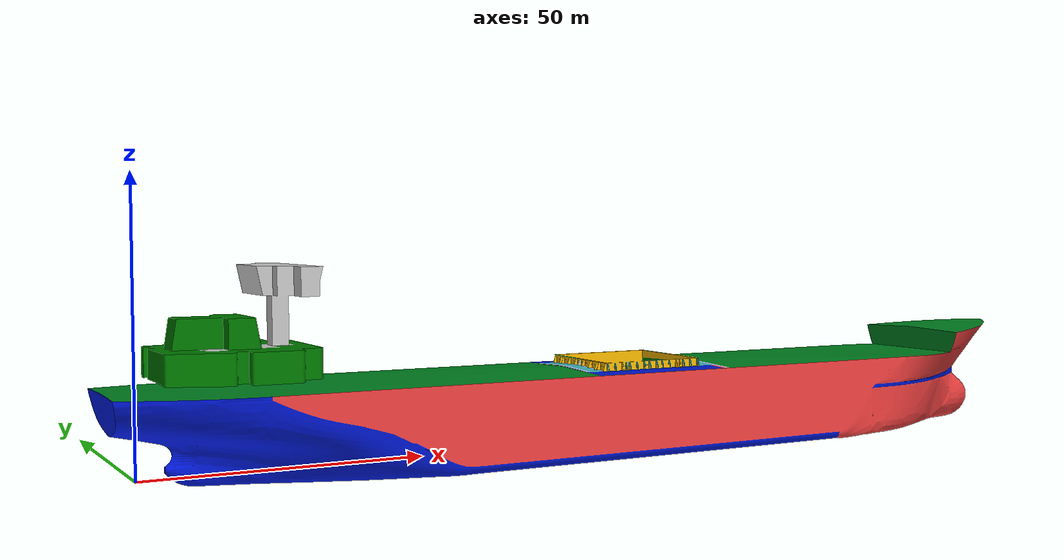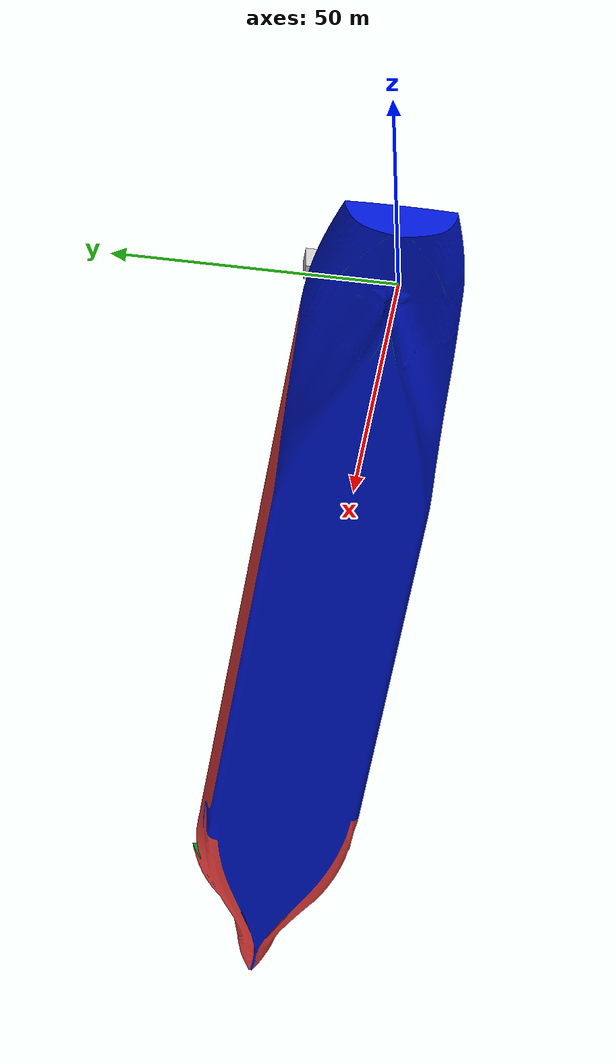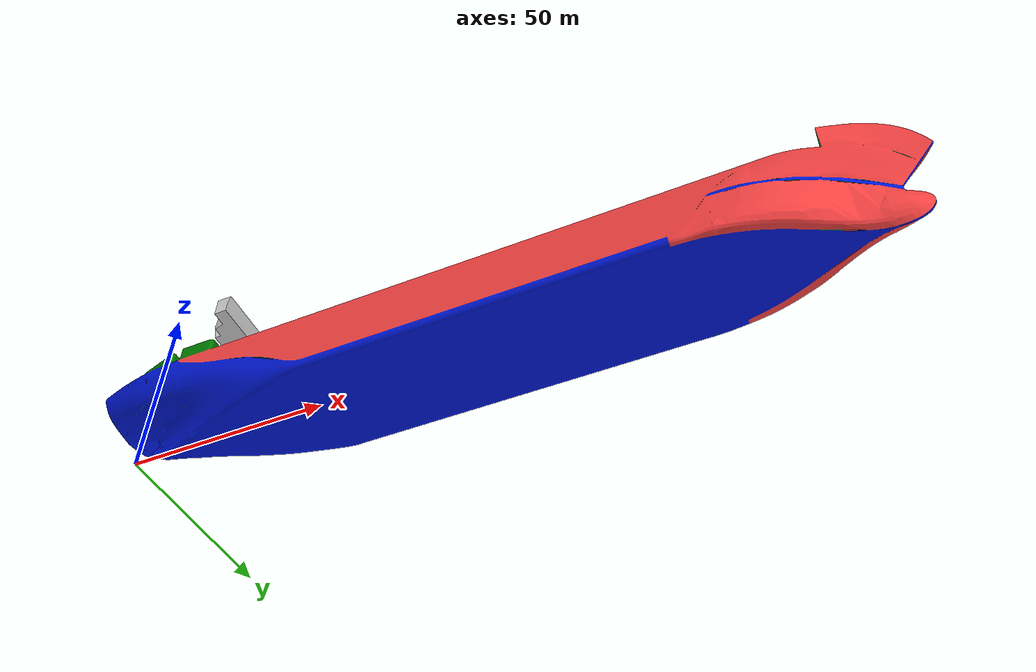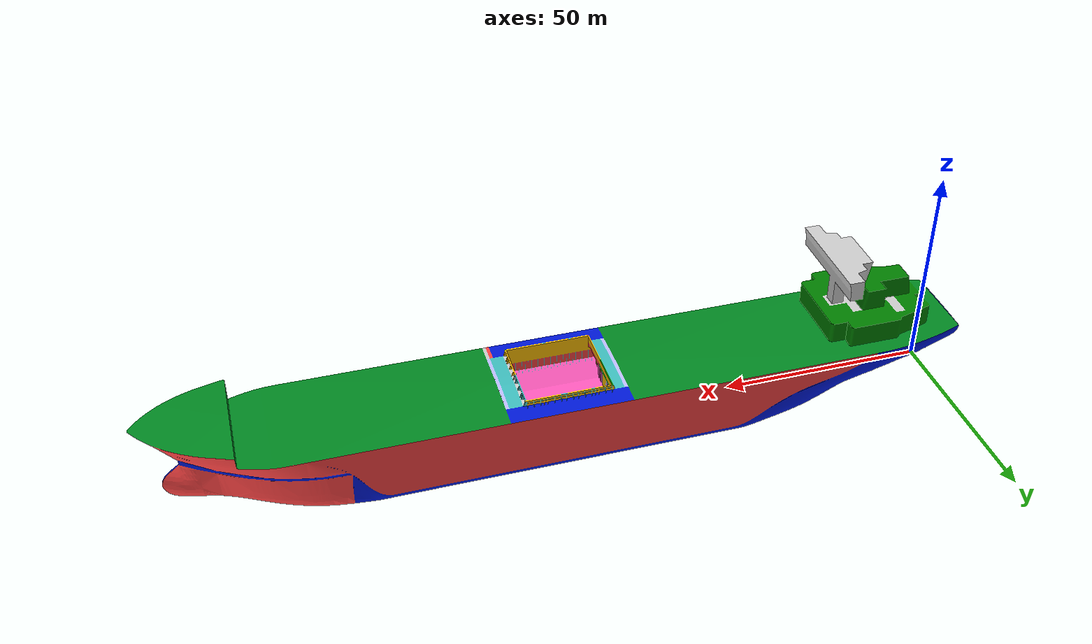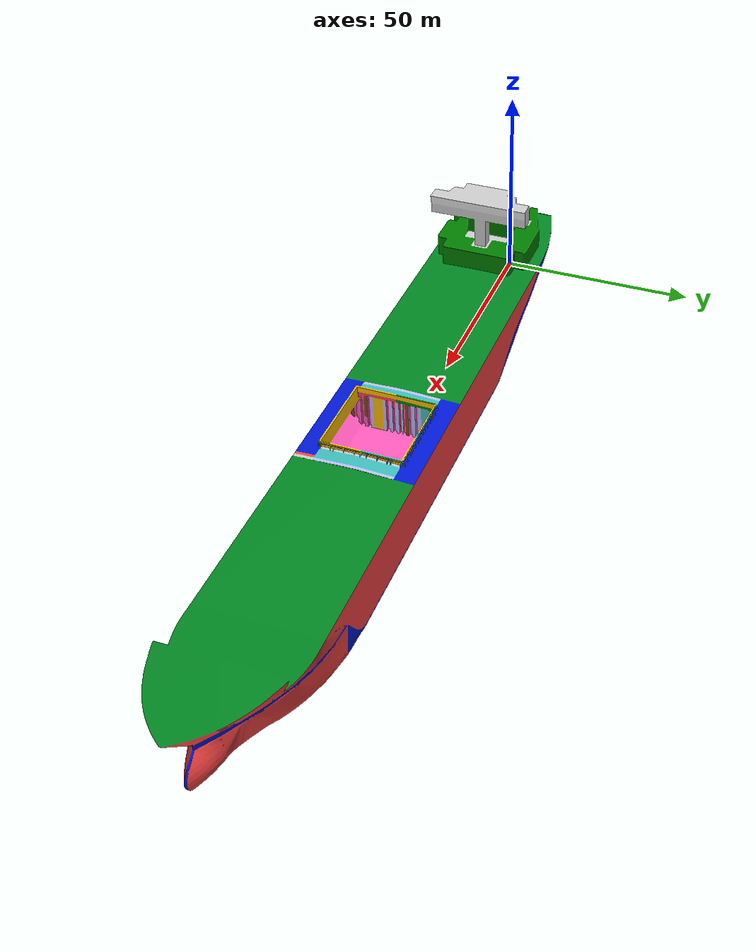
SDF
<?xml version='1.0'?>
<sdf version='1.6'>
  <model name='transportship_180m'>
	<static>false</static>

    <link name="link">
	  <pose>0 0 0 0 0 0</pose>
      <collision name="collision">
        <geometry>
          <mesh>
            <scale>0.1 0.1 0.1</scale>
            <uri>model://transport_ship/meshes/model.dae</uri>
          </mesh>
        </geometry>
      </collision>
      <visual name="visual">
        <geometry>
          <mesh>
            <scale>0.1 0.1 0.1</scale>
            <uri>model://transport_ship/meshes/model.dae</uri>
          </mesh>
        </geometry>
      </visual>
    </link>

	<link name="body">
		<inertial>
			<mass>-0.001</mass>
			<inertia>
			  <ixx>86000.28907821859966</ixx>
			  <ixy>0</ixy>
			  <ixz>0</ixz>
			  <iyy>86000.28907821859966</iyy>
			  <iyz>0</iyz>
			  <izz>500000.026548245743671</izz>
			</inertia>
		</inertial>
	</link>
	<plugin name="BuoyancyPlugin" filename="libBuoyancyPlugin.so">
		<fluid_density>1000</fluid_density>

		<link name="body">
		  <center_of_volume>1 2 3</center_of_volume>
		  <volume>50</volume>
		</link>

	</plugin>

  </model>
</sdf>
